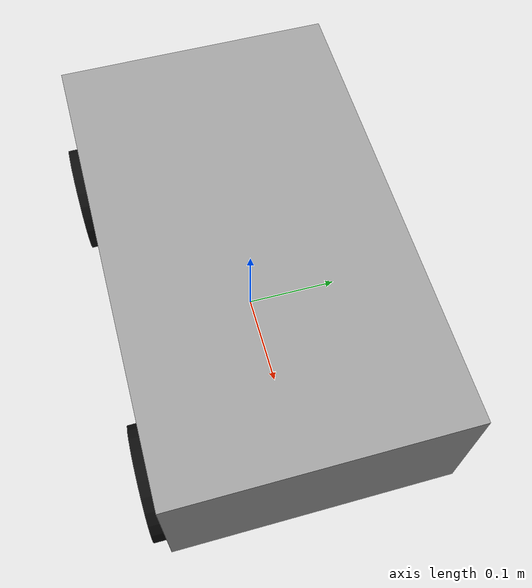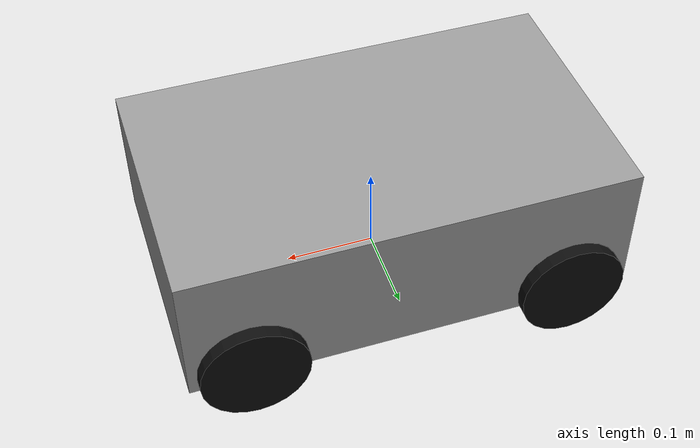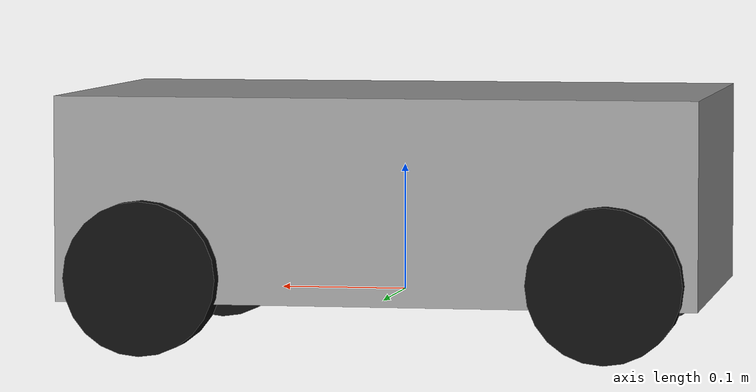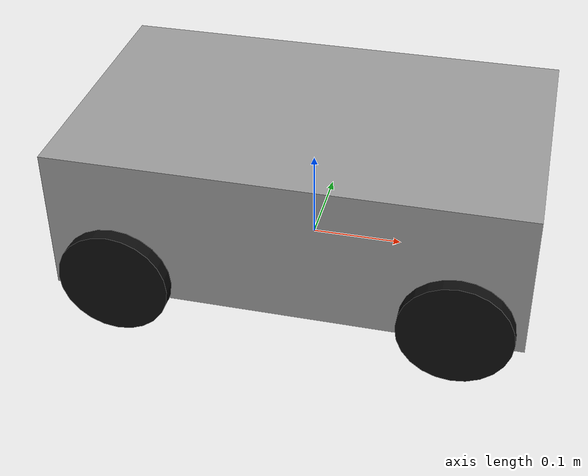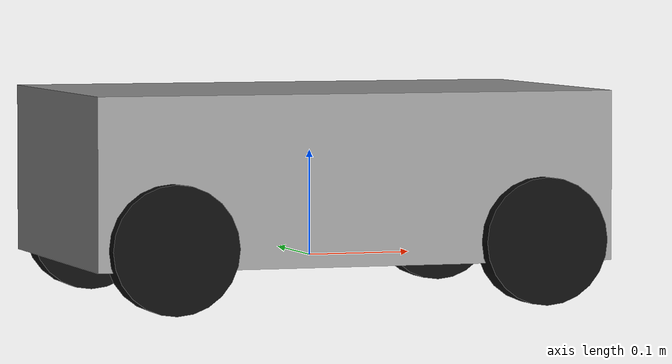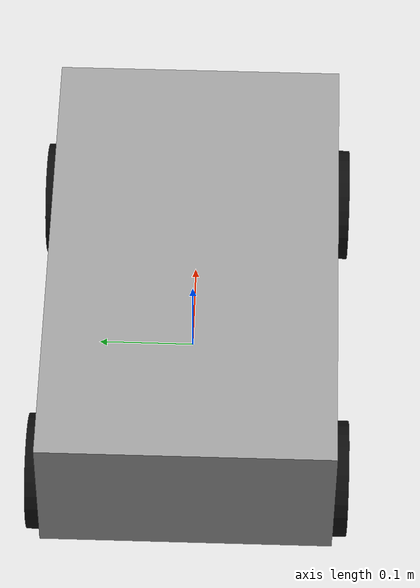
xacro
<?xml version="1.0"?>
<robot name="basic_rover">

  <!-- Materials (helps visibility in RViz) -->
  <material name="gray"><color rgba="0.6 0.6 0.6 1.0"/></material>
  <material name="black"><color rgba="0.05 0.05 0.05 1.0"/></material>

  <!-- Base -->
  <link name="base_link">
    <visual>
      <origin xyz="0 0 0.08" rpy="0 0 0"/>
      <geometry>
        <box size="0.50 0.30 0.16"/>
      </geometry>
      <material name="gray"/>
    </visual>

    <collision>
      <origin xyz="0 0 0.08" rpy="0 0 0"/>
      <geometry>
        <box size="0.50 0.30 0.16"/>
      </geometry>
    </collision>

    <inertial>
      <origin xyz="0 0 0.08" rpy="0 0 0"/>
      <mass value="10.0"/>
      <!-- rough inertia for a box -->
      <inertia ixx="0.2" ixy="0.0" ixz="0.0" iyy="0.4" iyz="0.0" izz="0.5"/>
    </inertial>
  </link>

  <!-- Wheels -->
  <link name="front_left_wheel">
    <visual>
      <origin xyz="0 0 0" rpy="1.5708 0 0"/>
      <geometry>
        <cylinder radius="0.06" length="0.03"/>
      </geometry>
      <material name="black"/>
    </visual>
    <collision>
      <origin xyz="0 0 0" rpy="1.5708 0 0"/>
      <geometry>
        <cylinder radius="0.06" length="0.03"/>
      </geometry>
    </collision>
  </link>

  <link name="front_right_wheel">
    <visual>
      <origin xyz="0 0 0" rpy="1.5708 0 0"/>
      <geometry>
        <cylinder radius="0.06" length="0.03"/>
      </geometry>
      <material name="black"/>
    </visual>
    <collision>
      <origin xyz="0 0 0" rpy="1.5708 0 0"/>
      <geometry>
        <cylinder radius="0.06" length="0.03"/>
      </geometry>
    </collision>
  </link>

  <link name="rear_left_wheel">
    <visual>
      <origin xyz="0 0 0" rpy="1.5708 0 0"/>
      <geometry>
        <cylinder radius="0.06" length="0.03"/>
      </geometry>
      <material name="black"/>
    </visual>
    <collision>
      <origin xyz="0 0 0" rpy="1.5708 0 0"/>
      <geometry>
        <cylinder radius="0.06" length="0.03"/>
      </geometry>
    </collision>
  </link>

  <link name="rear_right_wheel">
    <visual>
      <origin xyz="0 0 0" rpy="1.5708 0 0"/>
      <geometry>
        <cylinder radius="0.06" length="0.03"/>
      </geometry>
      <material name="black"/>
    </visual>
    <collision>
      <origin xyz="0 0 0" rpy="1.5708 0 0"/>
      <geometry>
        <cylinder radius="0.06" length="0.03"/>
      </geometry>
    </collision>
  </link>

  <!-- Joints (fixed for now, just to place wheels) -->
  <!-- wheel center z: put them clearly below the base -->
  <joint name="front_left_wheel_joint" type="continuous">
    <parent link="base_link"/>
    <child link="front_left_wheel"/>
    <origin xyz="0.18 0.15 0.02" rpy="0 0 0"/>
    <axis xyz="0 1 0"/>
  </joint>

  <joint name="front_right_wheel_joint" type="continuous">
    <parent link="base_link"/>
    <child link="front_right_wheel"/>
    <origin xyz="0.18 -0.15 0.02" rpy="0 0 0"/>
    <axis xyz="0 1 0"/>
  </joint>

  <joint name="rear_left_wheel_joint" type="continuous">
    <parent link="base_link"/>
    <child link="rear_left_wheel"/>
    <origin xyz="-0.18 0.15 0.02" rpy="0 0 0"/>
    <axis xyz="0 1 0"/>
  </joint>

  <joint name="rear_right_wheel_joint" type="continuous">
    <parent link="base_link"/>
    <child link="rear_right_wheel"/>
    <origin xyz="-0.18 -0.15 0.02" rpy="0 0 0"/>
    <axis xyz="0 1 0"/>
  </joint>

</robot>
